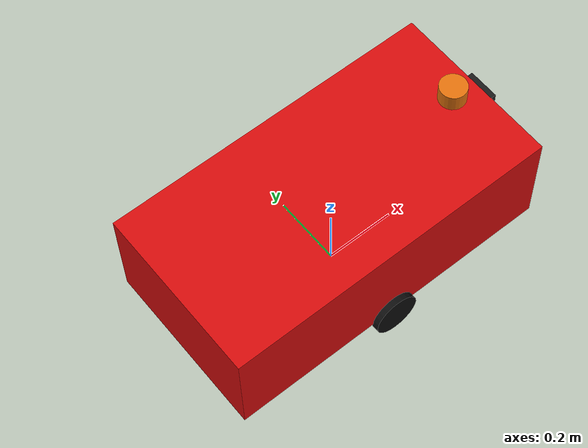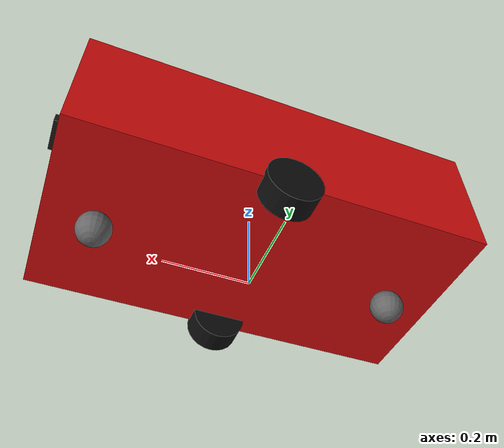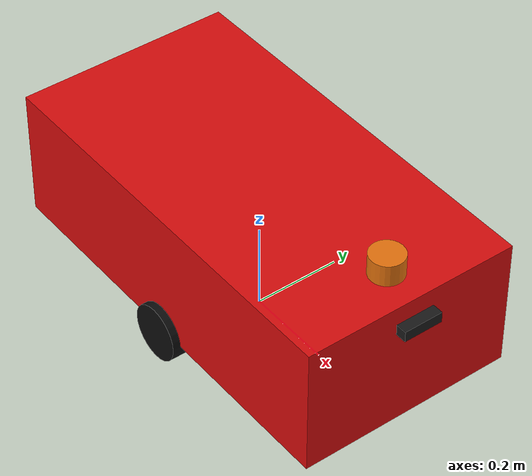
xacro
<?xml version="1.0"?>
<robot name="amr" xmlns:xacro="http://www.ros.org/wiki/xacro">

  <!--  AMR PHYSICAL PARAMETERS (from user spec)                     -->
  <!--  wheel_diameter  = 128 mm                                     -->
  <!--  wheel_distance   = 472 mm  (track / separation)               -->
  <!--  base width (Y)  = 496 mm                                     -->
  <!--  base depth (X)  = 951 mm                                     -->
  <!--  base height (Z) = 301 mm                                     -->
  <xacro:property name="wheel_diameter"   value="0.128"/>
  <xacro:property name="wheel_radius"     value="${wheel_diameter/2}"/>
  <xacro:property name="wheel_width"      value="0.06"/>
  <xacro:property name="wheel_separation" value="0.472"/>

  <xacro:property name="base_width"   value="0.496"/>
  <xacro:property name="base_depth"   value="0.951"/>
  <xacro:property name="base_height"  value="0.301"/>
  <xacro:property name="base_mass"    value="45.0"/>

  <xacro:property name="wheel_mass"   value="1.5"/>
  <xacro:property name="caster_radius" value="0.04"/>
  <xacro:property name="caster_mass"  value="0.3"/>

  <!-- how high above the wheel-axis the base box sits -->
  <xacro:property name="base_z_offset" value="${wheel_radius}"/>

  <!-- lidar -->
  <xacro:property name="lidar_radius" value="0.038"/>
  <xacro:property name="lidar_height" value="0.05"/>
  <xacro:property name="lidar_x" value="${base_depth/2 - 0.08}"/>
  <xacro:property name="lidar_z" value="${base_height + lidar_height/2 + 0.01}"/>

  <xacro:property name="cam_size_x" value="0.025"/>
  <xacro:property name="cam_size_y" value="0.09"/>
  <xacro:property name="cam_size_z" value="0.025"/>
  <xacro:property name="cam_x" value="${lidar_x + 0.10}"/>
  <xacro:property name="cam_z" value="${lidar_z - 0.08}"/>

  <material name="body_red">
    <color rgba="0.85 0.05 0.05 1.0"/>
  </material>
  <material name="wheel_black">
    <color rgba="0.05 0.05 0.05 1.0"/>
  </material>
  <material name="caster_grey">
    <color rgba="0.4 0.4 0.4 1.0"/>
  </material>
  <material name="lidar_orange">
    <color rgba="0.9 0.45 0.05 1.0"/>
  </material>
  <material name="cam_dark">
    <color rgba="0.1 0.1 0.1 1.0"/>
  </material>

  <!-- ============================ inertia helper macros ============================ -->
  <xacro:macro name="box_inertia" params="m x y z">
    <inertia ixx="${m*(y*y+z*z)/12}" ixy="0.0" ixz="0.0"
              iyy="${m*(x*x+z*z)/12}" iyz="0.0"
              izz="${m*(x*x+y*y)/12}"/>
  </xacro:macro>

  <xacro:macro name="cylinder_inertia" params="m r h">
    <inertia ixx="${m*(3*r*r+h*h)/12}" ixy="0.0" ixz="0.0"
              iyy="${m*(3*r*r+h*h)/12}" iyz="0.0"
              izz="${m*r*r/2}"/>
  </xacro:macro>

  <xacro:macro name="sphere_inertia" params="m r">
    <inertia ixx="${2*m*r*r/5}" ixy="0.0" ixz="0.0"
              iyy="${2*m*r*r/5}" iyz="0.0"
              izz="${2*m*r*r/5}"/>
  </xacro:macro>

  <!-- ============================ base_footprint / base_link ============================ -->
  <link name="base_footprint"/>

  <joint name="base_joint" type="fixed">
    <parent link="base_footprint"/>
    <child link="base_link"/>
    <origin xyz="0 0 ${base_z_offset}" rpy="0 0 0"/>
  </joint>

  <link name="base_link">
    <visual>
      <origin xyz="0 0 ${base_height/2}" rpy="0 0 0"/>
      <geometry>
        <box size="${base_depth} ${base_width} ${base_height}"/>
      </geometry>
      <material name="body_red"/>
    </visual>
    <collision>
      <origin xyz="0 0 ${base_height/2}" rpy="0 0 0"/>
      <geometry>
        <box size="${base_depth} ${base_width} ${base_height}"/>
      </geometry>
    </collision>
    <inertial>
      <origin xyz="0 0 ${base_height/2}" rpy="0 0 0"/>
      <mass value="${base_mass}"/>
      <xacro:box_inertia m="${base_mass}" x="${base_depth}" y="${base_width}" z="${base_height}"/>
    </inertial>
  </link>

  <!-- ============================ drive wheels (differential) ============================ -->
  <xacro:macro name="drive_wheel" params="prefix reflect">
    <link name="${prefix}_wheel_link">
      <visual>
        <origin xyz="0 0 0" rpy="${pi/2} 0 0"/>
        <geometry>
          <cylinder radius="${wheel_radius}" length="${wheel_width}"/>
        </geometry>
        <material name="wheel_black"/>
      </visual>
      <collision>
        <origin xyz="0 0 0" rpy="${pi/2} 0 0"/>
        <geometry>
          <cylinder radius="${wheel_radius}" length="${wheel_width}"/>
        </geometry>
      </collision>
      <inertial>
        <mass value="${wheel_mass}"/>
        <xacro:cylinder_inertia m="${wheel_mass}" r="${wheel_radius}" h="${wheel_width}"/>
      </inertial>
    </link>

    <joint name="${prefix}_wheel_joint" type="continuous">
      <parent link="base_link"/>
      <child link="${prefix}_wheel_link"/>
      <!-- wheels mounted at the drive axis (base_link origin height), centred in X,
           offset sideways by half the wheel separation -->
      <origin xyz="0 ${reflect*wheel_separation/2} 0" rpy="0 0 0"/>
      <axis xyz="0 1 0"/>
      <dynamics damping="0.2" friction="0.1"/>
    </joint>
  </xacro:macro>

  <xacro:drive_wheel prefix="left"  reflect="1"/>
  <xacro:drive_wheel prefix="right" reflect="-1"/>

  <!-- ============================ passive caster wheels (front & rear, for stability) ============================ -->
  <xacro:macro name="caster_wheel" params="prefix x">
    <link name="${prefix}_caster_link">
      <visual>
        <geometry>
          <sphere radius="${caster_radius}"/>
        </geometry>
        <material name="caster_grey"/>
      </visual>
      <collision>
        <geometry>
          <sphere radius="${caster_radius}"/>
        </geometry>
      </collision>
      <inertial>
        <mass value="${caster_mass}"/>
        <xacro:sphere_inertia m="${caster_mass}" r="${caster_radius}"/>
      </inertial>
    </link>

    <joint name="${prefix}_caster_joint" type="fixed">
      <parent link="base_link"/>
      <child link="${prefix}_caster_link"/>
      <origin xyz="${x} 0 ${-(wheel_radius-caster_radius)}" rpy="0 0 0"/>
    </joint>
  </xacro:macro>

  <xacro:caster_wheel prefix="front" x="${base_depth/2 - 0.12}"/>
  <xacro:caster_wheel prefix="rear"  x="${-(base_depth/2 - 0.12)}"/>

  <!-- ============================ 2D LiDAR ============================ -->
  <link name="lidar_link">
    <visual>
      <geometry>
        <cylinder radius="${lidar_radius}" length="${lidar_height}"/>
      </geometry>
      <material name="lidar_orange"/>
    </visual>
    <collision>
      <geometry>
        <cylinder radius="${lidar_radius}" length="${lidar_height}"/>
      </geometry>
    </collision>
    <inertial>
      <mass value="0.25"/>
      <xacro:cylinder_inertia m="0.25" r="${lidar_radius}" h="${lidar_height}"/>
    </inertial>
  </link>

  <joint name="lidar_joint" type="fixed">
    <parent link="base_link"/>
    <child link="lidar_link"/>
    <!-- mounted near the front, on top of the chassis -->
    <origin xyz="${lidar_x} 0 ${lidar_z}" rpy="0 0 0"/>
  </joint>

  <!-- ============================ IMU (for odom drift correction via EKF) ============================ -->
  <link name="imu_link">
    <inertial>
      <mass value="0.05"/>
      <inertia ixx="0.0001" ixy="0.0" ixz="0.0" iyy="0.0001" iyz="0.0" izz="0.0001"/>
    </inertial>
  </link>

  <joint name="imu_joint" type="fixed">
    <parent link="base_link"/>
    <!-- mounted at the robot's center of rotation, near the drive-wheel axis -->
    <child link="imu_link"/>
    <origin xyz="0 0 0" rpy="0 0 0"/>
  </joint>

  <!-- ============================ Depth camera (RGBD) ============================ -->
  <link name="camera_link">
    <visual>
      <geometry>
        <box size="${cam_size_x} ${cam_size_y} ${cam_size_z}"/>
      </geometry>
      <material name="cam_dark"/>
    </visual>
    <collision>
      <geometry>
        <box size="${cam_size_x} ${cam_size_y} ${cam_size_z}"/>
      </geometry>
    </collision>
    <inertial>
      <mass value="0.1"/>
      <xacro:box_inertia m="0.1" x="${cam_size_x}" y="${cam_size_y}" z="${cam_size_z}"/>
    </inertial>
  </link>

  <joint name="camera_joint" type="fixed">
    <parent link="base_link"/>
    <child link="camera_link"/>
    <!-- front-facing, mounted below the lidar and slightly forward -->
    <origin xyz="${cam_x} 0 ${cam_z}" rpy="0 0 0"/>
  </joint>

  <link name="camera_optical_link"/>

  <joint name="camera_optical_joint" type="fixed">
    <parent link="camera_link"/>
    <child link="camera_optical_link"/>
    <origin xyz="0 0 0" rpy="${-pi/2} 0 ${-pi/2}"/>
  </joint>

  <!-- ============================ ros2_control-free: Ignition plugins ============================ -->
  <xacro:include filename="$(find amr_description)/urdf/amr.gazebo.xacro"/>

</robot>
